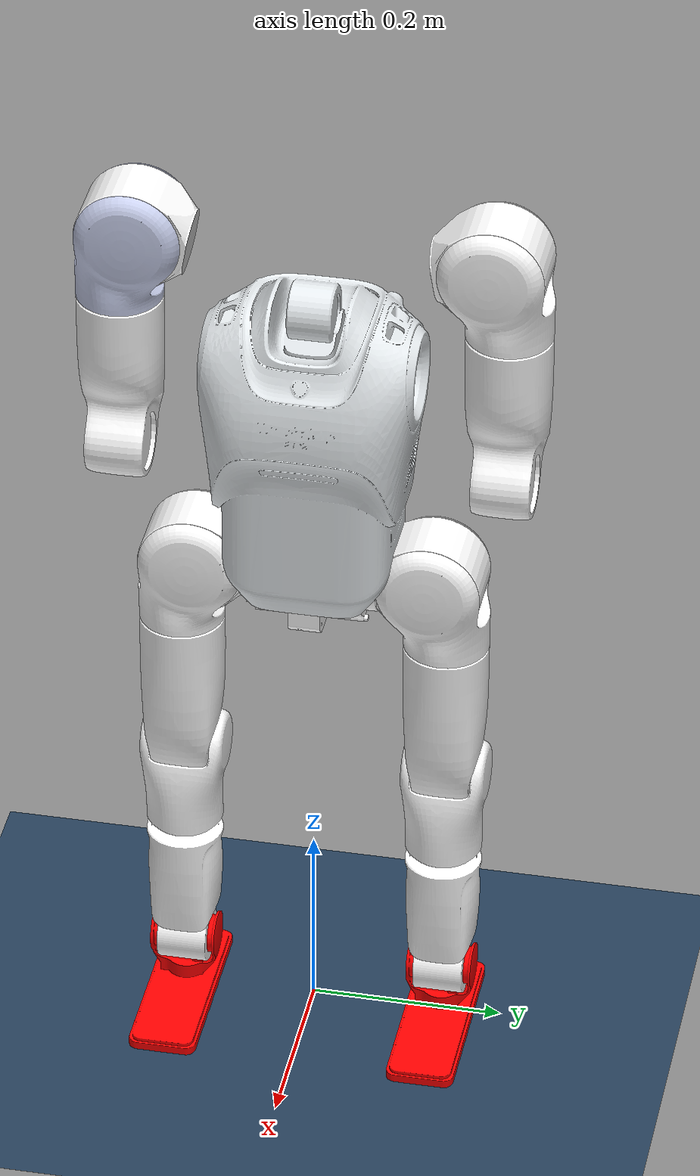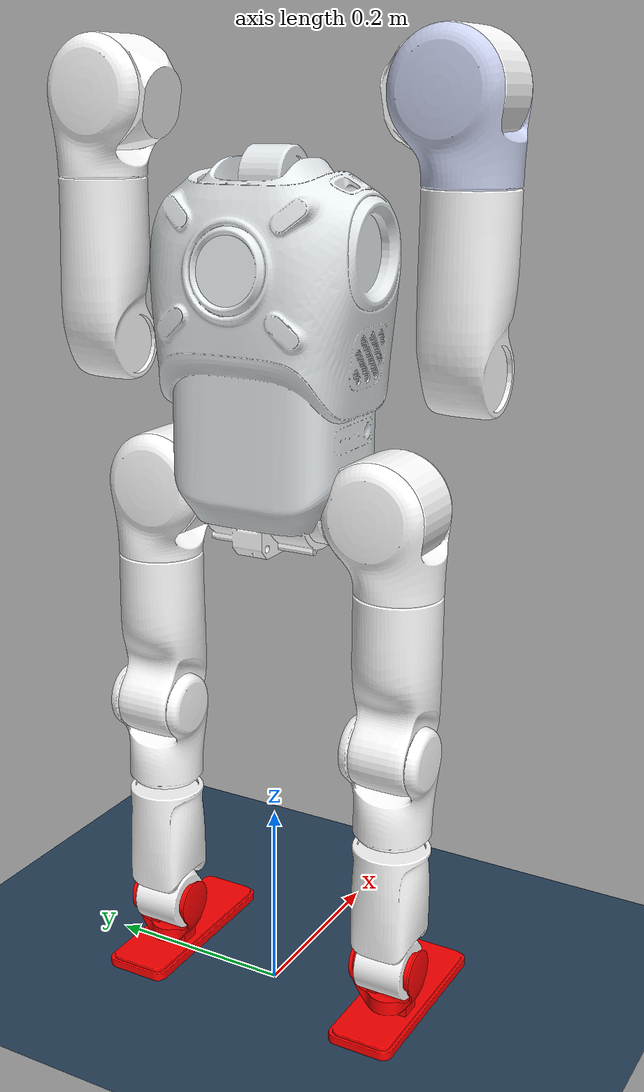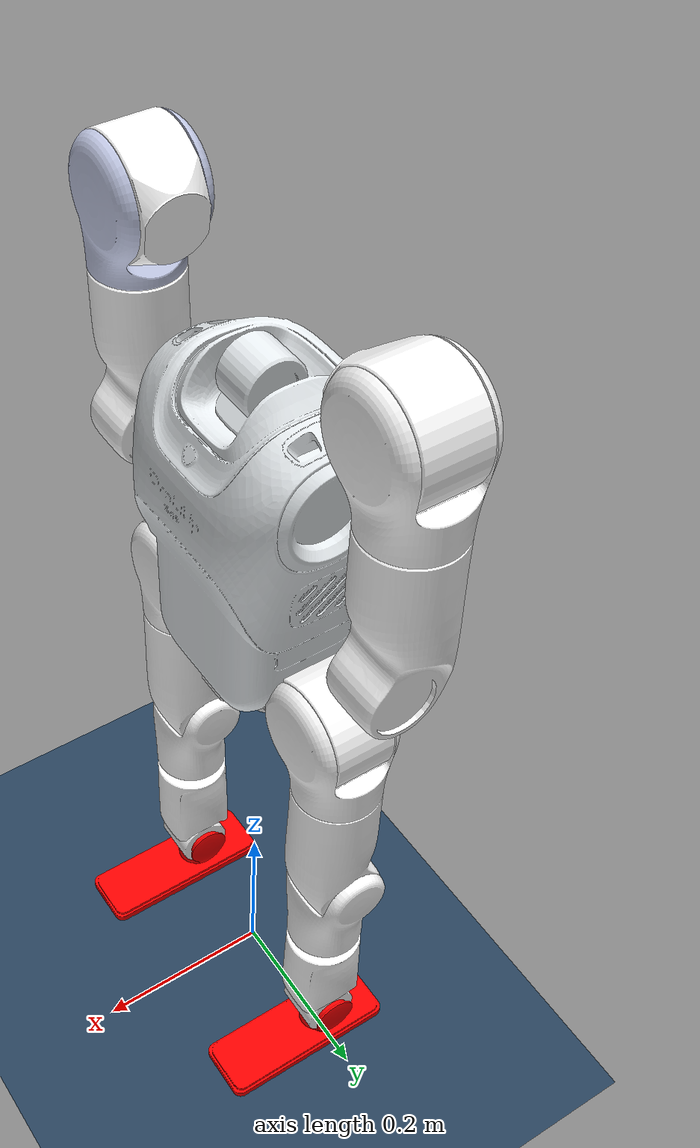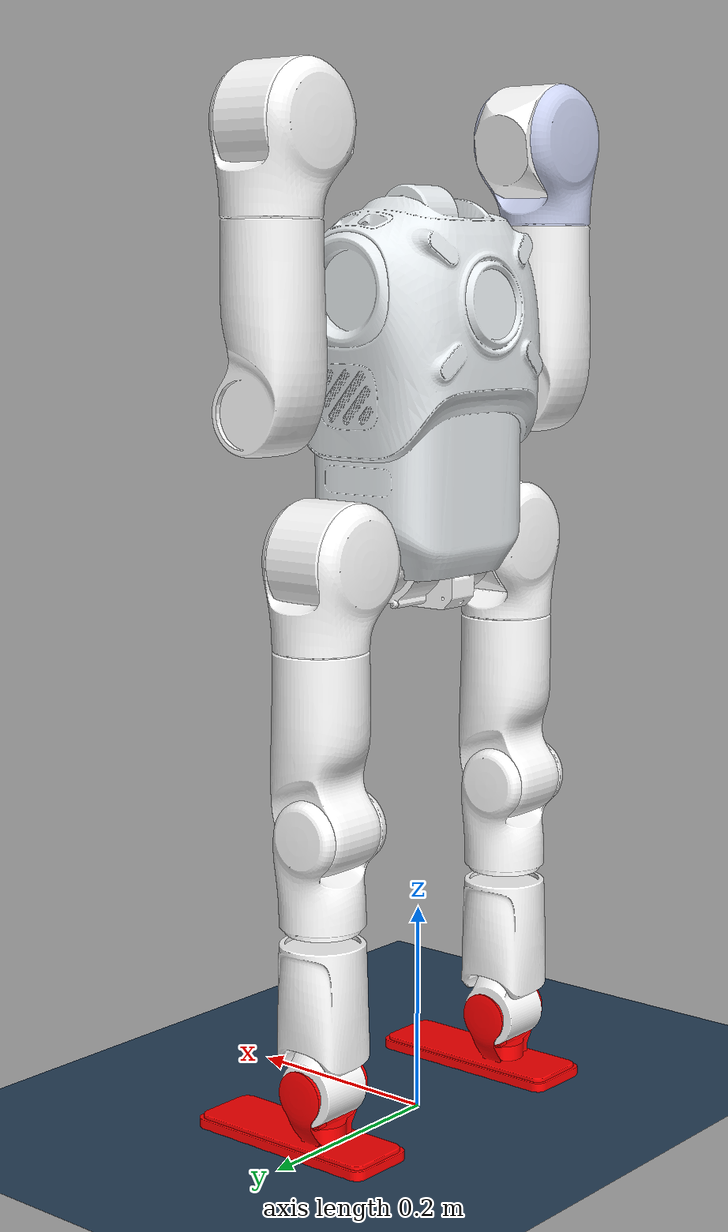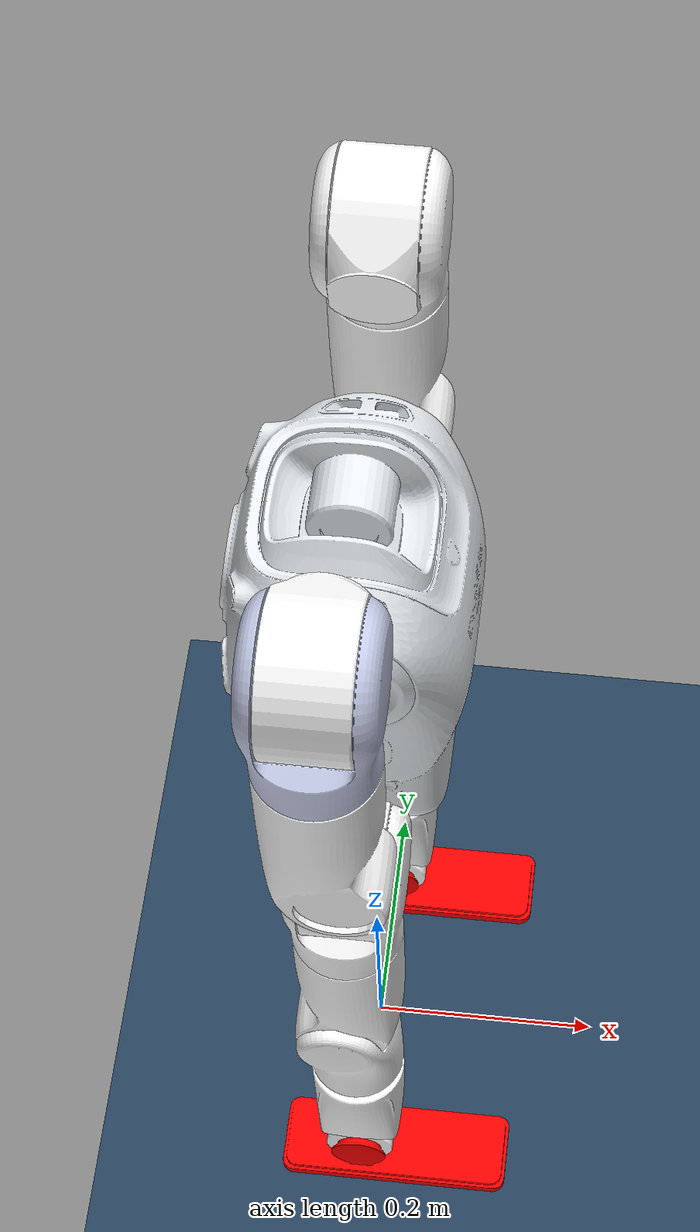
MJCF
<mujoco model="E1 scene">
  <include file="E1.xml"/>

  <statistic center="1.0 0.7 1.0" extent="0.8"/>

  <visual>
    <headlight diffuse="0.6 0.6 0.6" ambient="0.1 0.1 0.1" specular="0.9 0.9 0.9"/>
    <rgba haze="0.15 0.25 0.35 1"/>
    <global azimuth="-140" elevation="-20"/>
  </visual>

  <asset>
    <texture type="skybox" builtin="flat" rgb1="0 0 0" rgb2="0 0 0" width="512" height="3072"/>
    <texture type="2d" name="groundplane" builtin="checker" mark="edge" rgb1="0.2 0.3 0.4" rgb2="0.1 0.2 0.3" markrgb="0.8 0.8 0.8" width="300" height="300"/>
    <material name="groundplane" texture="groundplane" texuniform="true" texrepeat="5 5" reflectance="0.2"/>
  </asset>

  <worldbody>
    <light pos="1 0 3.5" dir="0 0 -1" directional="true"/>
    <geom name="floor" size="0 0 0.05" type="plane" material="groundplane"/>
  </worldbody>
</mujoco>

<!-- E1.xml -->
<mujoco model="E1">
  <compiler angle="radian" meshdir="./meshes/"/>
  <statistic meansize="0.144785" extent="1.23314" center="0.025392 2.0634e-05 -0.245975"/>
  <default>
    <joint damping="0.1" armature="0.01" frictionloss="0.1"/>
  </default>
  <asset>
    <mesh name="pelvis" content_type="model/stl" file="pelvis.STL"/>
    <mesh name="left_hip_pitch_link" content_type="model/stl" file="left_hip_pitch_link.STL"/>
    <mesh name="left_hip_roll_link" content_type="model/stl" file="left_hip_roll_link.STL"/>
    <mesh name="left_hip_yaw_link" content_type="model/stl" file="left_hip_yaw_link.STL"/>
    <mesh name="left_knee_link" content_type="model/stl" file="left_knee_link.STL"/>
    <mesh name="left_ankle_roll_link" content_type="model/stl" file="left_ankle_roll_link.STL"/>
    <mesh name="left_ankle_pitch_link" content_type="model/stl" file="left_ankle_pitch_link.STL"/>
    <mesh name="right_hip_pitch_link" content_type="model/stl" file="right_hip_pitch_link.STL"/>
    <mesh name="right_hip_roll_link" content_type="model/stl" file="right_hip_roll_link.STL"/>
    <mesh name="right_hip_yaw_link" content_type="model/stl" file="right_hip_yaw_link.STL"/>
    <mesh name="right_knee_link" content_type="model/stl" file="right_knee_link.STL"/>
    <mesh name="right_ankle_roll_link" content_type="model/stl" file="right_ankle_roll_link.STL"/>
    <mesh name="right_ankle_pitch_link" content_type="model/stl" file="right_ankle_pitch_link.STL"/>
    <mesh name="torso_link" content_type="model/stl" file="torso_link.STL"/>
    <mesh name="left_shoulder_pitch_link" content_type="model/stl" file="left_shoulder_pitch_link.STL"/>
    <mesh name="left_shoulder_roll_link" content_type="model/stl" file="left_shoulder_roll_link.STL"/>
    <mesh name="left_shoulder_yaw_link" content_type="model/stl" file="left_shoulder_yaw_link.STL"/>
    <mesh name="right_shoulder_pitch_link" content_type="model/stl" file="right_shoulder_pitch_link.STL"/>
    <mesh name="right_shoulder_roll_link" content_type="model/stl" file="right_shoulder_roll_link.STL"/>
    <mesh name="right_shoulder_yaw_link" content_type="model/stl" file="right_shoulder_yaw_link.STL"/>
  </asset>

  <worldbody>
    <body name="pelvis" pos="0 0 0.55">
      <inertial pos="0.000237439 -2.72576e-05 0.226179" quat="1 0.000353866 -0.000307582 -1.21289e-05" mass="15.596" diaginertia="0.51644 0.277433 0.248523"/>
      <joint name="pelvis" type="free" limited="false" actuatorfrclimited="false"/>
      <geom type="mesh" contype="0" conaffinity="0" group="1" density="0" rgba="1 1 1 1" mesh="pelvis"/>
      <geom type="mesh" rgba="1 1 1 1" mesh="pelvis"/>
      <geom type="mesh" contype="0" conaffinity="0" group="1" density="0" rgba="0.89804 0.91765 0.92941 1" mesh="torso_link"/>
      <geom type="mesh" rgba="0.89804 0.91765 0.92941 1" mesh="torso_link"/>
      <geom pos="0 0.13613 0.37182" quat="0.996195 0.0871543 0 0" type="mesh" contype="0" conaffinity="0" group="1" density="0" rgba="1 1 1 1" mesh="left_shoulder_pitch_link"/>
      <geom pos="0 0.13613 0.37182" quat="0.996195 0.0871543 0 0" type="mesh" rgba="1 1 1 1" mesh="left_shoulder_pitch_link"/>
      <geom pos="0 0.181408 0.379804" quat="1 0 0 0" type="mesh" contype="0" conaffinity="0" group="1" density="0" rgba="1 1 1 1" mesh="left_shoulder_roll_link"/>
      <geom pos="0 0.181408 0.379804" quat="1 0 0 0" type="mesh" rgba="1 1 1 1" mesh="left_shoulder_roll_link"/>
      <geom pos="0 0.196408 0.295304" quat="1 0 0 0" type="mesh" contype="0" conaffinity="0" group="1" density="0" rgba="1 1 1 1" mesh="left_shoulder_yaw_link"/>
      <geom pos="0 0.196408 0.295304" quat="1 0 0 0" type="mesh" rgba="1 1 1 1" mesh="left_shoulder_yaw_link"/>
      <geom pos="0 -0.13615 0.37182" quat="0.996195 -0.0871543 0 0" type="mesh" contype="0" conaffinity="0" group="1" density="0" rgba="1 1 1 1" mesh="right_shoulder_pitch_link"/>
      <geom pos="0 -0.13615 0.37182" quat="0.996195 -0.0871543 0 0" type="mesh" rgba="1 1 1 1" mesh="right_shoulder_pitch_link"/>
      <geom pos="0 -0.181409 0.3798" quat="1 0 0 0" type="mesh" contype="0" conaffinity="0" group="1" density="0" rgba="0.79216 0.81961 0.93333 1" mesh="right_shoulder_roll_link"/>
      <geom pos="0 -0.181409 0.3798" quat="1 0 0 0" type="mesh" rgba="0.79216 0.81961 0.93333 1" mesh="right_shoulder_roll_link"/>
      <geom pos="0 -0.196409 0.2953" quat="1 0 0 0" type="mesh" contype="0" conaffinity="0" group="1" density="0" rgba="1 1 1 1" mesh="right_shoulder_yaw_link"/>
      <geom pos="0 -0.196409 0.2953" quat="1 0 0 0" type="mesh" rgba="1 1 1 1" mesh="right_shoulder_yaw_link"/>
      <site name="imu" pos="0 0 0.01"/>
      <body name="left_hip_pitch_link" pos="0 0.064 0">
        <inertial pos="1.3537e-07 0.054954 3.3871e-07" quat="0.707138 0.707076 -4.89995e-08 5.03013e-06" mass="1.276" diaginertia="0.00085075 0.00057568 0.00051249"/>
        <joint name="left_hip_pitch_joint" pos="0 0 0" axis="0 1 0" range="-2.09 0.916" actuatorfrcrange="-60 60"/>
        <geom type="mesh" contype="0" conaffinity="0" group="1" density="0" rgba="1 1 1 1" mesh="left_hip_pitch_link"/>
        <body name="left_hip_roll_link" pos="0 0.0585 0">
          <inertial pos="7.6686e-06 0.0079325 -0.026283" quat="0.698807 0.106882 -0.106648 0.699193" mass="1.126" diaginertia="0.00116277 0.0010653 0.000701879"/>
          <joint name="left_hip_roll_joint" pos="0 0 0" axis="1 0 0" range="-0.5236 1.57" actuatorfrcrange="-60 60"/>
          <geom type="mesh" contype="0" conaffinity="0" group="1" density="0" rgba="1 1 1 1" mesh="left_hip_roll_link"/>
          <body name="left_hip_yaw_link" pos="0 0.015 -0.0845">
            <inertial pos="2.0219e-05 1.0806e-08 -0.085875" quat="0.706997 0.0136446 0.0136455 0.706953" mass="0.896" diaginertia="0.0033579 0.00329741 0.000874933"/>
            <joint name="left_hip_yaw_joint" pos="0 0 0" axis="0 0 1" range="-2.0944 2.0944" actuatorfrcrange="-60 60"/>
            <geom type="mesh" contype="0" conaffinity="0" group="1" density="0" rgba="1 1 1 1" mesh="left_hip_yaw_link"/>
            <geom type="mesh" rgba="1 1 1 1" mesh="left_hip_yaw_link"/>
            <body name="left_knee_link" pos="-0.01 0 -0.1605">
              <inertial pos="0.0099658 -3.7884e-07 -0.10091" quat="0.999516 7.56227e-06 -0.0310962 -0.000165673" mass="0.8" diaginertia="0.00119611 0.0011524 0.000778366"/>
              <joint name="left_knee_joint" pos="0 0 0" axis="0 1 0" range="0 2.09" actuatorfrcrange="-60 60"/>
              <geom type="mesh" contype="0" conaffinity="0" group="1" density="0" rgba="1 1 1 1" mesh="left_knee_link"/>
              <body name="left_ankle_roll_link" pos="0.01 0 -0.21">
                <inertial pos="4.1385e-08 1.9657e-08 -0.02984" quat="0.707111 -3.83295e-06 3.8329e-06 0.707103" mass="0.5" diaginertia="9.0659e-05 8.3199e-05 6.3387e-05"/>
                <joint name="left_ankle_roll_joint" pos="0 0 0" axis="1 0 0" range="-0.524 0.524" actuatorfrcrange="-60 60"/>
                <geom type="mesh" contype="0" conaffinity="0" group="1" density="0" rgba="1 1 1 1" mesh="left_ankle_roll_link"/>
                <geom type="mesh" rgba="1 1 1 1" mesh="left_ankle_roll_link"/>
                <body name="left_ankle_pitch_link" pos="0 0 -0.035">
                  <inertial pos="0.021373 -0.00053753 -0.045899" quat="-0.00122853 0.710149 0.00481053 0.704033" mass="0.8" diaginertia="0.000833233 0.000726778 0.000160098"/>
                  <joint name="left_ankle_pitch_joint" pos="0 0 0" axis="0 1 0" range="-1.571 1.571" actuatorfrcrange="-60 60"/>
                  <geom type="mesh" contype="0" conaffinity="0" group="1" density="0" rgba="1 0 0 1" mesh="left_ankle_pitch_link"/>
                  <geom type="mesh" rgba="1 0 0 1" mesh="left_ankle_pitch_link"/>
                </body>
              </body>
            </body>
          </body>
        </body>
      </body>
      <body name="right_hip_pitch_link" pos="0 -0.064 0">
        <inertial pos="1.3544e-07 -0.054954 3.3868e-07" quat="0.707071 0.707143 -6.73716e-06 1.75533e-06" mass="1.276" diaginertia="0.00085075 0.00057568 0.00051249"/>
        <joint name="right_hip_pitch_joint" pos="0 0 0" axis="0 1 0" range="-2.09 0.916" actuatorfrcrange="-60 60"/>
        <geom type="mesh" contype="0" conaffinity="0" group="1" density="0" rgba="1 1 1 1" mesh="right_hip_pitch_link"/>
        <body name="right_hip_roll_link" pos="0 -0.0585 0">
          <inertial pos="7.1644e-06 -0.0079301 -0.026283" quat="0.698884 -0.106749 0.107072 0.699072" mass="1.126" diaginertia="0.00116278 0.0010653 0.000701879"/>
          <joint name="right_hip_roll_joint" pos="0 0 0" axis="1 0 0" range="-1.57 0.5236" actuatorfrcrange="-60 60"/>
          <geom type="mesh" contype="0" conaffinity="0" group="1" density="0" rgba="1 1 1 1" mesh="right_hip_roll_link"/>
          <body name="right_hip_yaw_link" pos="0 -0.015 -0.0845">
            <inertial pos="2.0226e-05 -9.8286e-11 -0.085875" quat="0.706996 0.0136446 0.0136455 0.706954" mass="0.896" diaginertia="0.0033579 0.00329741 0.000874933"/>
            <joint name="right_hip_yaw_joint" pos="0 0 0" axis="0 0 1" range="-2.0944 2.0944" actuatorfrcrange="-60 60"/>
            <geom type="mesh" contype="0" conaffinity="0" group="1" density="0" rgba="1 1 1 1" mesh="right_hip_yaw_link"/>
            <geom type="mesh" rgba="1 1 1 1" mesh="right_hip_yaw_link"/>
            <body name="right_knee_link" pos="-0.01 0 -0.1605">
              <inertial pos="0.009966 3.3622e-07 -0.10091" quat="0.999516 -1.35689e-05 -0.0310931 -0.000161462" mass="0.8" diaginertia="0.00119601 0.0011524 0.000778336"/>
              <joint name="right_knee_joint" pos="0 0 0" axis="0 1 0" range="0 2.09" actuatorfrcrange="-60 60"/>
              <geom type="mesh" contype="0" conaffinity="0" group="1" density="0" rgba="1 1 1 1" mesh="right_knee_link"/>
              <body name="right_ankle_roll_link" pos="0.01 0 -0.21">
                <inertial pos="-2.3106e-08 -2.837e-09 -0.02984" quat="0.707111 4.54761e-06 -1.70129e-06 0.707103" mass="0.5" diaginertia="9.0659e-05 8.3199e-05 6.3387e-05"/>
                <joint name="right_ankle_roll_joint" pos="0 0 0" axis="1 0 0" range="-0.524 0.524" actuatorfrcrange="-60 60"/>
                <geom type="mesh" contype="0" conaffinity="0" group="1" density="0" rgba="1 1 1 1" mesh="right_ankle_roll_link"/>
                <geom type="mesh" rgba="1 1 1 1" mesh="right_ankle_roll_link"/>
                <body name="right_ankle_pitch_link" pos="0 0 -0.035">
                  <inertial pos="0.021373 -0.00053751 -0.0459" quat="-0.00122907 0.710149 0.00481013 0.704033" mass="0.8" diaginertia="0.000833233 0.000726778 0.000160088"/>
                  <joint name="right_ankle_pitch_joint" pos="0 0 0" axis="0 1 0" range="-1.571 1.571" actuatorfrcrange="-60 60"/>
                  <geom type="mesh" contype="0" conaffinity="0" group="1" density="0" rgba="1 0 0 1" mesh="right_ankle_pitch_link"/>
                  <geom type="mesh" rgba="1 0 0 1" mesh="right_ankle_pitch_link"/>
                </body>
              </body>
            </body>
          </body>
        </body>
      </body>
    </body>
  </worldbody>
  <actuator>
    <motor name="left_hip_pitch_joint"     joint="left_hip_pitch_joint"     />
    <motor name="left_hip_roll_joint"      joint="left_hip_roll_joint"      />
    <motor name="left_hip_yaw_joint"       joint="left_hip_yaw_joint"       />
    <motor name="left_knee_joint"          joint="left_knee_joint"    />
    <motor name="left_ankle_roll_joint"    joint="left_ankle_roll_joint"   />
    <motor name="left_ankle_pitch_joint"   joint="left_ankle_pitch_joint"   />

    <motor name="right_hip_pitch_joint"     joint="right_hip_pitch_joint"     />
    <motor name="right_hip_roll_joint"      joint="right_hip_roll_joint"      />
    <motor name="right_hip_yaw_joint"       joint="right_hip_yaw_joint"       />
    <motor name="right_knee_joint"          joint="right_knee_joint"    />
    <motor name="right_ankle_roll_joint"    joint="right_ankle_roll_joint"   />
    <motor name="right_ankle_pitch_joint"   joint="right_ankle_pitch_joint"   />
  </actuator>
  <sensor>
    <!-- 身体的的姿态 -->
    <gyro          name="gyro"    site='imu' noise='0.005' cutoff='34.9'/>
    <accelerometer name="acc"     site='imu' noise='0.005' cutoff='157'/>
    <framequat     name='bq'      objtype='site' noise='0.001' objname='imu'/>
    <framelinvel   name="blv"  objtype='site' objname='imu'/>
  </sensor>
</mujoco>
